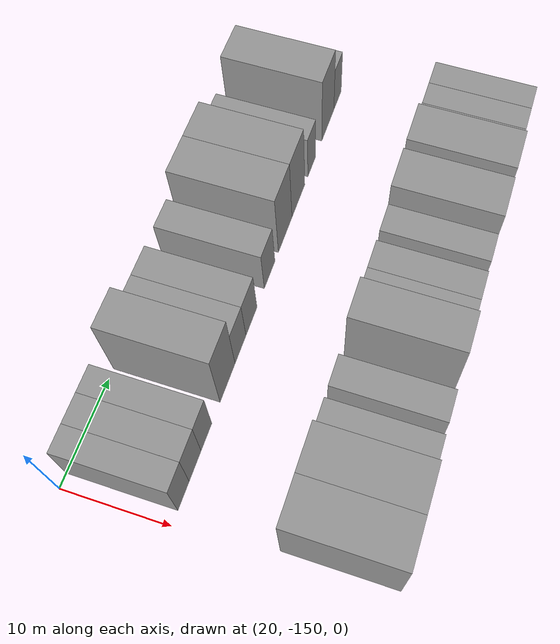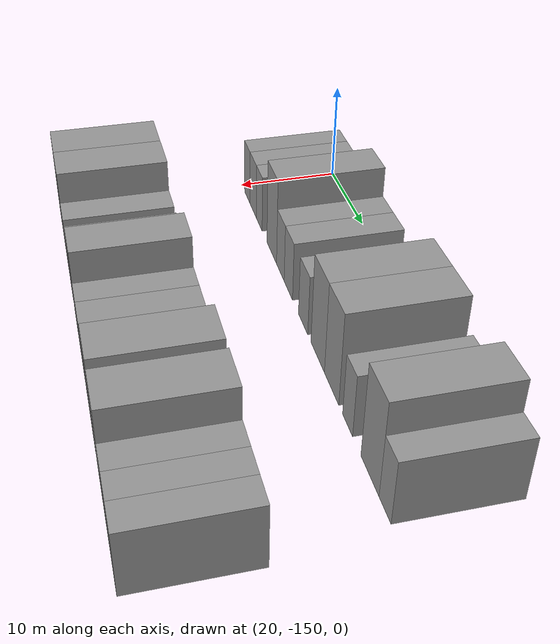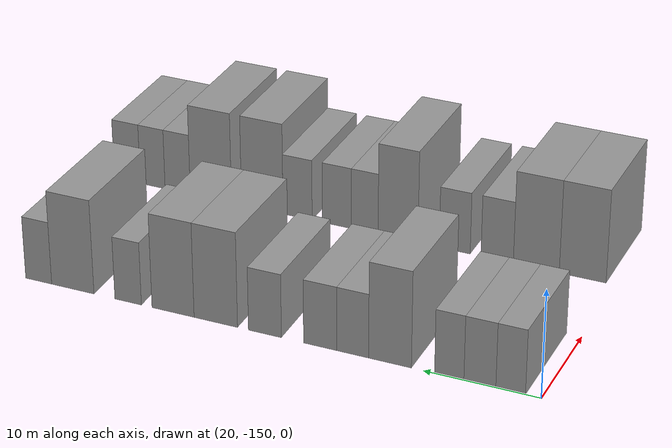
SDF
<sdf version="1.6">
 <world name="default">
  <model name="building_13">
   <static>1</static>
   <pose>25.0000 -147.4128 0 0.000000 0.000000 0.000000</pose>
   <link name="link">
    <pose>0 0 3.00 0 0 0</pose>
    <collision name="collision"><geometry><box><size>10.0000 2.4966 6.0000</size></box></geometry></collision>
    <visual name="visual">
     <cast_shadows>0</cast_shadows>
     <geometry><box><size>10.0000 2.4966 6.0000</size></box></geometry>
     <material>
      <script>
       <uri>model://grey_wall/materials/scripts</uri>
       <uri>model://grey_wall/materials/textures</uri>
       <name>vrc/grey_wall</name>
      </script>
     </material>
    </visual>
   </link>
  </model>
  <model name="building_14">
   <static>1</static>
   <pose>25.0000 -144.8089 0 0.000000 0.000000 0.000000</pose>
   <link name="link">
    <pose>0 0 3.00 0 0 0</pose>
    <collision name="collision"><geometry><box><size>10.0000 2.7111 6.0000</size></box></geometry></collision>
    <visual name="visual">
     <cast_shadows>0</cast_shadows>
     <geometry><box><size>10.0000 2.7111 6.0000</size></box></geometry>
     <material>
      <script>
       <uri>model://grey_wall/materials/scripts</uri>
       <uri>model://grey_wall/materials/textures</uri>
       <name>vrc/grey_wall</name>
      </script>
     </material>
    </visual>
   </link>
  </model>
  <model name="building_15">
   <static>1</static>
   <pose>25.0000 -142.1972 0 0.000000 0.000000 0.000000</pose>
   <link name="link">
    <pose>0 0 3.00 0 0 0</pose>
    <collision name="collision"><geometry><box><size>10.0000 2.5124 6.0000</size></box></geometry></collision>
    <visual name="visual">
     <cast_shadows>0</cast_shadows>
     <geometry><box><size>10.0000 2.5124 6.0000</size></box></geometry>
     <material>
      <script>
       <uri>model://grey_wall/materials/scripts</uri>
       <uri>model://grey_wall/materials/textures</uri>
       <name>vrc/grey_wall</name>
      </script>
     </material>
    </visual>
   </link>
  </model>
  <model name="building_16">
   <static>1</static>
   <pose>25.0000 -137.0712 0 0.000000 0.000000 0.000000</pose>
   <link name="link">
    <pose>0 0 4.50 0 0 0</pose>
    <collision name="collision"><geometry><box><size>10.0000 3.7395 9.0000</size></box></geometry></collision>
    <visual name="visual">
     <cast_shadows>0</cast_shadows>
     <geometry><box><size>10.0000 3.7395 9.0000</size></box></geometry>
     <material>
      <script>
       <uri>model://grey_wall/materials/scripts</uri>
       <uri>model://grey_wall/materials/textures</uri>
       <name>vrc/grey_wall</name>
      </script>
     </material>
    </visual>
   </link>
  </model>
  <model name="building_17">
   <static>1</static>
   <pose>25.0000 -133.7946 0 0.000000 0.000000 0.000000</pose>
   <link name="link">
    <pose>0 0 3.00 0 0 0</pose>
    <collision name="collision"><geometry><box><size>10.0000 2.8137 6.0000</size></box></geometry></collision>
    <visual name="visual">
     <cast_shadows>0</cast_shadows>
     <geometry><box><size>10.0000 2.8137 6.0000</size></box></geometry>
     <material>
      <script>
       <uri>model://grey_wall/materials/scripts</uri>
       <uri>model://grey_wall/materials/textures</uri>
       <name>vrc/grey_wall</name>
      </script>
     </material>
    </visual>
   </link>
  </model>
  <model name="building_18">
   <static>1</static>
   <pose>25.0000 -130.9138 0 0.000000 0.000000 0.000000</pose>
   <link name="link">
    <pose>0 0 3.00 0 0 0</pose>
    <collision name="collision"><geometry><box><size>10.0000 2.9480 6.0000</size></box></geometry></collision>
    <visual name="visual">
     <cast_shadows>0</cast_shadows>
     <geometry><box><size>10.0000 2.9480 6.0000</size></box></geometry>
     <material>
      <script>
       <uri>model://grey_wall/materials/scripts</uri>
       <uri>model://grey_wall/materials/textures</uri>
       <name>vrc/grey_wall</name>
      </script>
     </material>
    </visual>
   </link>
  </model>
  <model name="building_19">
   <static>1</static>
   <pose>25.0000 -125.9477 0 0.000000 0.000000 0.000000</pose>
   <link name="link">
    <pose>0 0 3.00 0 0 0</pose>
    <collision name="collision"><geometry><box><size>10.0000 2.9842 6.0000</size></box></geometry></collision>
    <visual name="visual">
     <cast_shadows>0</cast_shadows>
     <geometry><box><size>10.0000 2.9842 6.0000</size></box></geometry>
     <material>
      <script>
       <uri>model://grey_wall/materials/scripts</uri>
       <uri>model://grey_wall/materials/textures</uri>
       <name>vrc/grey_wall</name>
      </script>
     </material>
    </visual>
   </link>
  </model>
  <model name="building_20">
   <static>1</static>
   <pose>25.0000 -121.4546 0 0.000000 0.000000 0.000000</pose>
   <link name="link">
    <pose>0 0 4.50 0 0 0</pose>
    <collision name="collision"><geometry><box><size>10.0000 4.0020 9.0000</size></box></geometry></collision>
    <visual name="visual">
     <cast_shadows>0</cast_shadows>
     <geometry><box><size>10.0000 4.0020 9.0000</size></box></geometry>
     <material>
      <script>
       <uri>model://grey_wall/materials/scripts</uri>
       <uri>model://grey_wall/materials/textures</uri>
       <name>vrc/grey_wall</name>
      </script>
     </material>
    </visual>
   </link>
  </model>
  <model name="building_21">
   <static>1</static>
   <pose>25.0000 -117.4886 0 0.000000 0.000000 0.000000</pose>
   <link name="link">
    <pose>0 0 4.50 0 0 0</pose>
    <collision name="collision"><geometry><box><size>10.0000 3.9301 9.0000</size></box></geometry></collision>
    <visual name="visual">
     <cast_shadows>0</cast_shadows>
     <geometry><box><size>10.0000 3.9301 9.0000</size></box></geometry>
     <material>
      <script>
       <uri>model://grey_wall/materials/scripts</uri>
       <uri>model://grey_wall/materials/textures</uri>
       <name>vrc/grey_wall</name>
      </script>
     </material>
    </visual>
   </link>
  </model>
  <model name="building_22">
   <static>1</static>
   <pose>25.0000 -113.2681 0 0.000000 0.000000 0.000000</pose>
   <link name="link">
    <pose>0 0 3.00 0 0 0</pose>
    <collision name="collision"><geometry><box><size>10.0000 2.5108 6.0000</size></box></geometry></collision>
    <visual name="visual">
     <cast_shadows>0</cast_shadows>
     <geometry><box><size>10.0000 2.5108 6.0000</size></box></geometry>
     <material>
      <script>
       <uri>model://grey_wall/materials/scripts</uri>
       <uri>model://grey_wall/materials/textures</uri>
       <name>vrc/grey_wall</name>
      </script>
     </material>
    </visual>
   </link>
  </model>
  <model name="building_23">
   <static>1</static>
   <pose>25.0000 -107.9738 0 0.000000 0.000000 0.000000</pose>
   <link name="link">
    <pose>0 0 4.50 0 0 0</pose>
    <collision name="collision"><geometry><box><size>10.0000 4.0778 9.0000</size></box></geometry></collision>
    <visual name="visual">
     <cast_shadows>0</cast_shadows>
     <geometry><box><size>10.0000 4.0778 9.0000</size></box></geometry>
     <material>
      <script>
       <uri>model://grey_wall/materials/scripts</uri>
       <uri>model://grey_wall/materials/textures</uri>
       <name>vrc/grey_wall</name>
      </script>
     </material>
    </visual>
   </link>
  </model>
  <model name="building_24">
   <static>1</static>
   <pose>25.0000 -104.6739 0 0.000000 0.000000 0.000000</pose>
   <link name="link">
    <pose>0 0 3.00 0 0 0</pose>
    <collision name="collision"><geometry><box><size>10.0000 2.5218 6.0000</size></box></geometry></collision>
    <visual name="visual">
     <cast_shadows>0</cast_shadows>
     <geometry><box><size>10.0000 2.5218 6.0000</size></box></geometry>
     <material>
      <script>
       <uri>model://grey_wall/materials/scripts</uri>
       <uri>model://grey_wall/materials/textures</uri>
       <name>vrc/grey_wall</name>
      </script>
     </material>
    </visual>
   </link>
  </model>
  <model name="building_112">
   <static>1</static>
   <pose>44.0000 -147.0157 0 0.000000 0.000000 0.000000</pose>
   <link name="link">
    <pose>0 0 4.50 0 0 0</pose>
    <collision name="collision"><geometry><box><size>10.0000 4.2075 9.0000</size></box></geometry></collision>
    <visual name="visual">
     <cast_shadows>0</cast_shadows>
     <geometry><box><size>10.0000 4.2075 9.0000</size></box></geometry>
     <material>
      <script>
       <uri>model://grey_wall/materials/scripts</uri>
       <uri>model://grey_wall/materials/textures</uri>
       <name>vrc/grey_wall</name>
      </script>
     </material>
    </visual>
   </link>
  </model>
  <model name="building_113">
   <static>1</static>
   <pose>44.0000 -142.8217 0 0.000000 0.000000 0.000000</pose>
   <link name="link">
    <pose>0 0 4.50 0 0 0</pose>
    <collision name="collision"><geometry><box><size>10.0000 4.1804 9.0000</size></box></geometry></collision>
    <visual name="visual">
     <cast_shadows>0</cast_shadows>
     <geometry><box><size>10.0000 4.1804 9.0000</size></box></geometry>
     <material>
      <script>
       <uri>model://grey_wall/materials/scripts</uri>
       <uri>model://grey_wall/materials/textures</uri>
       <name>vrc/grey_wall</name>
      </script>
     </material>
    </visual>
   </link>
  </model>
  <model name="building_114">
   <static>1</static>
   <pose>44.0000 -139.2404 0 0.000000 0.000000 0.000000</pose>
   <link name="link">
    <pose>0 0 3.00 0 0 0</pose>
    <collision name="collision"><geometry><box><size>10.0000 2.9822 6.0000</size></box></geometry></collision>
    <visual name="visual">
     <cast_shadows>0</cast_shadows>
     <geometry><box><size>10.0000 2.9822 6.0000</size></box></geometry>
     <material>
      <script>
       <uri>model://grey_wall/materials/scripts</uri>
       <uri>model://grey_wall/materials/textures</uri>
       <name>vrc/grey_wall</name>
      </script>
     </material>
    </visual>
   </link>
  </model>
  <model name="building_115">
   <static>1</static>
   <pose>44.0000 -135.3089 0 0.000000 0.000000 0.000000</pose>
   <link name="link">
    <pose>0 0 3.00 0 0 0</pose>
    <collision name="collision"><geometry><box><size>10.0000 2.8810 6.0000</size></box></geometry></collision>
    <visual name="visual">
     <cast_shadows>0</cast_shadows>
     <geometry><box><size>10.0000 2.8810 6.0000</size></box></geometry>
     <material>
      <script>
       <uri>model://grey_wall/materials/scripts</uri>
       <uri>model://grey_wall/materials/textures</uri>
       <name>vrc/grey_wall</name>
      </script>
     </material>
    </visual>
   </link>
  </model>
  <model name="building_116">
   <static>1</static>
   <pose>44.0000 -129.9701 0 0.000000 0.000000 0.000000</pose>
   <link name="link">
    <pose>0 0 4.50 0 0 0</pose>
    <collision name="collision"><geometry><box><size>10.0000 3.7967 9.0000</size></box></geometry></collision>
    <visual name="visual">
     <cast_shadows>0</cast_shadows>
     <geometry><box><size>10.0000 3.7967 9.0000</size></box></geometry>
     <material>
      <script>
       <uri>model://grey_wall/materials/scripts</uri>
       <uri>model://grey_wall/materials/textures</uri>
       <name>vrc/grey_wall</name>
      </script>
     </material>
    </visual>
   </link>
  </model>
  <model name="building_117">
   <static>1</static>
   <pose>44.0000 -126.7880 0 0.000000 0.000000 0.000000</pose>
   <link name="link">
    <pose>0 0 3.00 0 0 0</pose>
    <collision name="collision"><geometry><box><size>10.0000 2.5674 6.0000</size></box></geometry></collision>
    <visual name="visual">
     <cast_shadows>0</cast_shadows>
     <geometry><box><size>10.0000 2.5674 6.0000</size></box></geometry>
     <material>
      <script>
       <uri>model://grey_wall/materials/scripts</uri>
       <uri>model://grey_wall/materials/textures</uri>
       <name>vrc/grey_wall</name>
      </script>
     </material>
    </visual>
   </link>
  </model>
  <model name="building_118">
   <static>1</static>
   <pose>44.0000 -124.1050 0 0.000000 0.000000 0.000000</pose>
   <link name="link">
    <pose>0 0 3.00 0 0 0</pose>
    <collision name="collision"><geometry><box><size>10.0000 2.7986 6.0000</size></box></geometry></collision>
    <visual name="visual">
     <cast_shadows>0</cast_shadows>
     <geometry><box><size>10.0000 2.7986 6.0000</size></box></geometry>
     <material>
      <script>
       <uri>model://grey_wall/materials/scripts</uri>
       <uri>model://grey_wall/materials/textures</uri>
       <name>vrc/grey_wall</name>
      </script>
     </material>
    </visual>
   </link>
  </model>
  <model name="building_119">
   <static>1</static>
   <pose>44.0000 -120.2794 0 0.000000 0.000000 0.000000</pose>
   <link name="link">
    <pose>0 0 3.00 0 0 0</pose>
    <collision name="collision"><geometry><box><size>10.0000 2.8526 6.0000</size></box></geometry></collision>
    <visual name="visual">
     <cast_shadows>0</cast_shadows>
     <geometry><box><size>10.0000 2.8526 6.0000</size></box></geometry>
     <material>
      <script>
       <uri>model://grey_wall/materials/scripts</uri>
       <uri>model://grey_wall/materials/textures</uri>
       <name>vrc/grey_wall</name>
      </script>
     </material>
    </visual>
   </link>
  </model>
  <model name="building_120">
   <static>1</static>
   <pose>44.0000 -116.7991 0 0.000000 0.000000 0.000000</pose>
   <link name="link">
    <pose>0 0 4.50 0 0 0</pose>
    <collision name="collision"><geometry><box><size>10.0000 4.1080 9.0000</size></box></geometry></collision>
    <visual name="visual">
     <cast_shadows>0</cast_shadows>
     <geometry><box><size>10.0000 4.1080 9.0000</size></box></geometry>
     <material>
      <script>
       <uri>model://grey_wall/materials/scripts</uri>
       <uri>model://grey_wall/materials/textures</uri>
       <name>vrc/grey_wall</name>
      </script>
     </material>
    </visual>
   </link>
  </model>
  <model name="building_121">
   <static>1</static>
   <pose>44.0000 -111.6700 0 0.000000 0.000000 0.000000</pose>
   <link name="link">
    <pose>0 0 4.50 0 0 0</pose>
    <collision name="collision"><geometry><box><size>10.0000 4.1502 9.0000</size></box></geometry></collision>
    <visual name="visual">
     <cast_shadows>0</cast_shadows>
     <geometry><box><size>10.0000 4.1502 9.0000</size></box></geometry>
     <material>
      <script>
       <uri>model://grey_wall/materials/scripts</uri>
       <uri>model://grey_wall/materials/textures</uri>
       <name>vrc/grey_wall</name>
      </script>
     </material>
    </visual>
   </link>
  </model>
  <model name="building_122">
   <static>1</static>
   <pose>44.0000 -108.3150 0 0.000000 0.000000 0.000000</pose>
   <link name="link">
    <pose>0 0 3.00 0 0 0</pose>
    <collision name="collision"><geometry><box><size>10.0000 2.5598 6.0000</size></box></geometry></collision>
    <visual name="visual">
     <cast_shadows>0</cast_shadows>
     <geometry><box><size>10.0000 2.5598 6.0000</size></box></geometry>
     <material>
      <script>
       <uri>model://grey_wall/materials/scripts</uri>
       <uri>model://grey_wall/materials/textures</uri>
       <name>vrc/grey_wall</name>
      </script>
     </material>
    </visual>
   </link>
  </model>
  <model name="building_123">
   <static>1</static>
   <pose>44.0000 -105.7639 0 0.000000 0.000000 0.000000</pose>
   <link name="link">
    <pose>0 0 3.00 0 0 0</pose>
    <collision name="collision"><geometry><box><size>10.0000 2.5426 6.0000</size></box></geometry></collision>
    <visual name="visual">
     <cast_shadows>0</cast_shadows>
     <geometry><box><size>10.0000 2.5426 6.0000</size></box></geometry>
     <material>
      <script>
       <uri>model://grey_wall/materials/scripts</uri>
       <uri>model://grey_wall/materials/textures</uri>
       <name>vrc/grey_wall</name>
      </script>
     </material>
    </visual>
   </link>
  </model>
  <model name="building_124">
   <static>1</static>
   <pose>44.0000 -103.1593 0 0.000000 0.000000 0.000000</pose>
   <link name="link">
    <pose>0 0 3.00 0 0 0</pose>
    <collision name="collision"><geometry><box><size>10.0000 2.6666 6.0000</size></box></geometry></collision>
    <visual name="visual">
     <cast_shadows>0</cast_shadows>
     <geometry><box><size>10.0000 2.6666 6.0000</size></box></geometry>
     <material>
      <script>
       <uri>model://grey_wall/materials/scripts</uri>
       <uri>model://grey_wall/materials/textures</uri>
       <name>vrc/grey_wall</name>
      </script>
     </material>
    </visual>
   </link>
  </model>
 </world>
</sdf>
